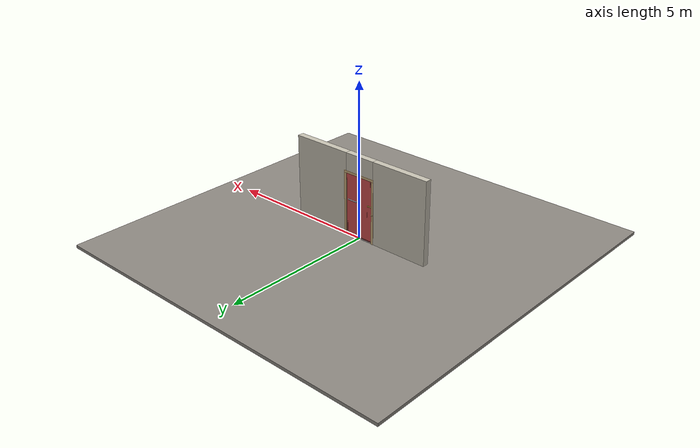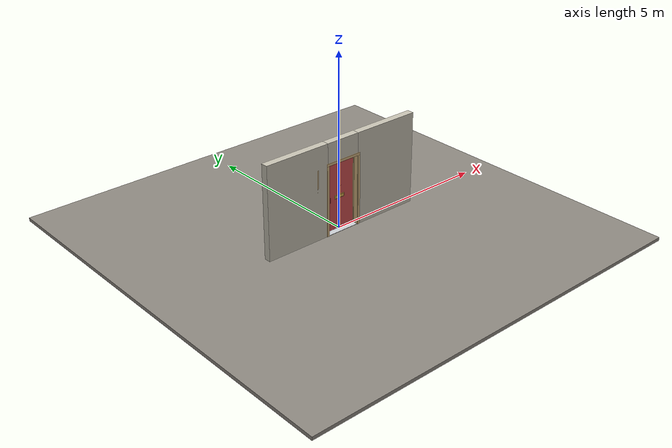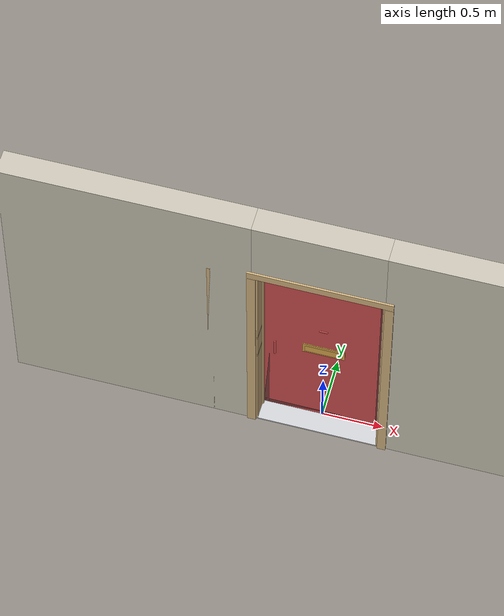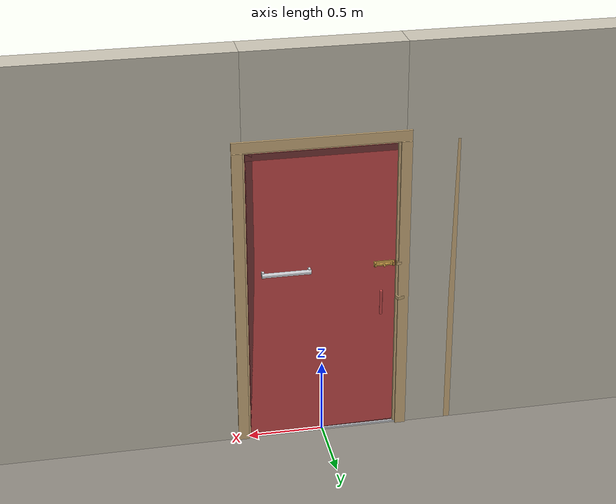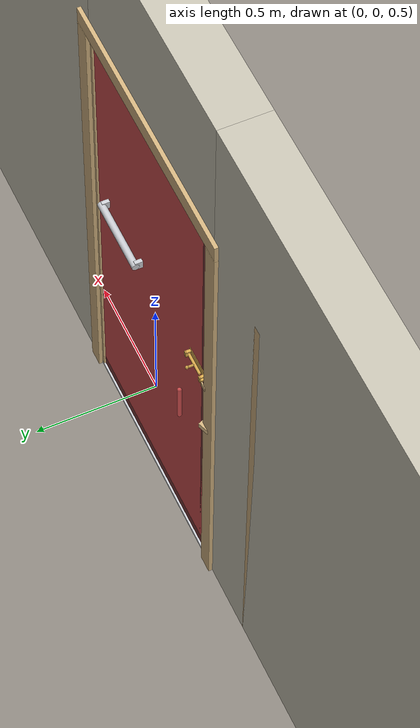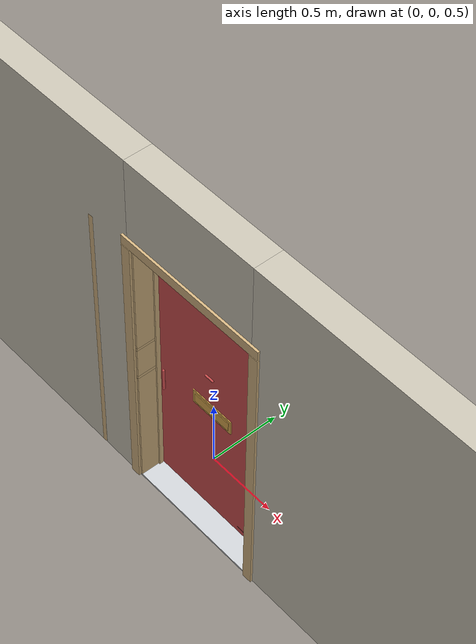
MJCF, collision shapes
<?xml version="1.0" ?>
<mujoco model="db0794_swing_single_full">
  <compiler angle="radian" meshdir="../../hardware" texturedir="../../textures" autolimits="true" inertiafromgeom="false"/>
  <option timestep="0.002" integrator="implicitfast" cone="elliptic" impratio="10" noslip_iterations="3">
    <flag multiccd="enable"/>
  </option>
  <size memory="16M"/>
  <default>
    <geom condim="4" solref="0.005 1" solimp="0.95 0.99 0.001"/>
    <joint solreflimit="0.005 1" solimplimit="0.95 0.99 0.001"/>
    <tendon solreflimit="0.005 1"/>
    <equality solref="0.002 1"/>
  </default>
  <visual>
    <headlight ambient="0.4 0.4 0.4" diffuse="0.7 0.7 0.7" specular="0.2 0.2 0.2"/>
    <quality shadowsize="4096"/>
    <map znear="0.01" zfar="60"/>
  </visual>
  <asset>
    <mesh name="hinge_11b97d6068" file="hinge_11b97d6068.obj"/>
    <mesh name="hinge_jamb_29995db8a9" file="hinge_jamb_29995db8a9.obj"/>
    <mesh name="house_numbers_ad0a8e8be0" file="house_numbers_ad0a8e8be0.obj"/>
    <mesh name="knocker_a8f2ce0ad7" file="knocker_a8f2ce0ad7.obj"/>
    <mesh name="pull_1e5d69a91a" file="pull_1e5d69a91a.obj"/>
    <material name="mat_floor" rgba="0.55 0.53 0.5 1" specular="0.2" shininess="0.15" reflectance="0"/>
    <material name="mat_wall" rgba="0.78 0.76 0.7 1" specular="0.2" shininess="0.1" reflectance="0"/>
    <material name="mat_leaf" rgba="0.2 0.2 0.2 0.5" specular="0.2" shininess="0.2" reflectance="0.1"/>
    <material name="mat_mesh_infill" rgba="0.6 0.62 0.64 0.55" specular="0.68" shininess="0.3" reflectance="0.1"/>
    <material name="mat_hinge" rgba="0.65 0.66 0.68 1" specular="0.74" shininess="0.5" reflectance="0.36"/>
    <material name="mat_op_stainless" rgba="0.75 0.76 0.77 1" specular="0.8" shininess="0.65" reflectance="0.4"/>
    <material name="mat_bolt" rgba="0.85 0.66 0.3 1" specular="0.8" shininess="0.75" reflectance="0.4"/>
    <material name="mat_op_brass" rgba="0.85 0.66 0.3 1" specular="0.8" shininess="0.75" reflectance="0.4"/>
    <material name="mat_frame" rgba="0.82 0.7 0.5 1" specular="0.2" shininess="0.45" reflectance="0"/>
    <material name="mat_seal" rgba="0.1 0.1 0.1 1" specular="0.2" shininess="0.1" reflectance="0"/>
    <material name="mat_threshold" rgba="0.8 0.81 0.83 1" specular="0.8" shininess="0.6" reflectance="0.4"/>
    <material name="mat_closer" rgba="0.8 0.81 0.83 1" specular="0.8" shininess="0.6" reflectance="0.4"/>
    <material name="mat_mailslot" rgba="0.85 0.66 0.3 1" specular="0.8" shininess="0.75" reflectance="0.4"/>
    <material name="mat_knocker" rgba="0.55 0.42 0.22 1" specular="0.74" shininess="0.45" reflectance="0.36"/>
    <material name="mat_numbers" rgba="0.05 0.05 0.05 1" specular="0.38" shininess="0.3" reflectance="0.12"/>
    <material name="mat_sidelite" rgba="0.85 0.92 0.95 0.25" specular="0.2" shininess="0.95" reflectance="0.1"/>
    <texture name="skybox" type="skybox" builtin="gradient" rgb1="0.6 0.7 0.85" rgb2="0.9 0.92 0.95" width="256" height="256"/>
  </asset>
  <worldbody>
    <light name="sun" pos="1.5 -2.5 4" dir="-0.3 0.5 -0.8" directional="true" diffuse="0.8 0.8 0.8" specular="0.3 0.3 0.3" castshadow="true"/>
    <light name="fill" pos="-1.5 2.5 3" dir="0.3 -0.5 -0.7" directional="true" diffuse="0.35 0.35 0.4" castshadow="false"/>
    <camera name="robot_view" pos="0 -2.622687 1.734312" xyaxes="1 0 0 0 0.26963 0.962964" fovy="52"/>
    <camera name="far_view" pos="0 2.461688 1.734312" xyaxes="-1 0 0 0 -0.26963 0.962964" fovy="52"/>
    <camera name="iso" pos="-1.932062 -2.215937 2.141063" xyaxes="0.741536 -0.670913 0 0.242917 0.268487 0.932151" fovy="46"/>
    <camera name="detail_handle" pos="-0.197 -0.8725 1.245" xyaxes="0.97561 0.219512 0 -0.070934 0.315262 0.94635" fovy="38"/>
    <geom name="floor" type="box" size="6 6 0.05" pos="0 0 -0.05" material="mat_floor" group="0" contype="1" conaffinity="1" friction="0.8 0.005 0.0001" density="2400"/>
    <geom name="wall_left" type="box" size="0.9825 0.1 1.35" pos="-1.5175 -0.0805 1.35" material="mat_wall" group="0" contype="1" conaffinity="1" friction="0.6 0.005 0.0001" density="800"/>
    <geom name="wall_right" type="box" size="0.9975 0.1 1.35" pos="1.5025 -0.0805 1.35" material="mat_wall" group="0" contype="1" conaffinity="1" friction="0.6 0.005 0.0001" density="800"/>
    <geom name="wall_header" type="box" size="0.52 0.1 0.303" pos="-0.015 -0.0805 2.397" material="mat_wall" group="0" contype="1" conaffinity="1" friction="0.6 0.005 0.0001" density="800"/>
    <geom name="hinge_0_jamb" type="mesh" mesh="hinge_jamb_29995db8a9" pos="0.483 0.0195 0.267" quat="0 0 0 1" material="mat_hinge" group="1" contype="0" conaffinity="0" density="7850"/>
    <geom name="hinge_1_jamb" type="mesh" mesh="hinge_jamb_29995db8a9" pos="0.483 0.0195 1.029" quat="0 0 0 1" material="mat_hinge" group="1" contype="0" conaffinity="0" density="7850"/>
    <geom name="hinge_2_jamb" type="mesh" mesh="hinge_jamb_29995db8a9" pos="0.483 0.0195 1.861" quat="0 0 0 1" material="mat_hinge" group="1" contype="0" conaffinity="0" density="7850"/>
    <geom name="leaf_aux_bolt_keeper_b" type="box" size="0.014 0.003 0.0005" pos="-0.4855 0.0245 1.202" quat="0.5 0.5 0.5 0.5" material="mat_op_brass" group="1" contype="0" conaffinity="0" density="7800"/>
    <geom name="leaf_aux_bolt_keeper_l" type="box" size="0.003 0.01 0.0005" pos="-0.4855 0.0135 1.215" quat="0.5 0.5 0.5 0.5" material="mat_op_brass" group="1" contype="0" conaffinity="0" density="7800"/>
    <geom name="leaf_aux_bolt_keeper_t" type="box" size="0.014 0.003 0.0005" pos="-0.4855 0.0245 1.228" quat="0.5 0.5 0.5 0.5" material="mat_op_brass" group="1" contype="0" conaffinity="0" density="7800"/>
    <geom name="leaf_aux_bolt_keeper_r" type="box" size="0.003 0.01 0.0005" pos="-0.4855 0.0355 1.215" quat="0.5 0.5 0.5 0.5" material="mat_op_brass" group="1" contype="0" conaffinity="0" density="7800"/>
    <geom name="jamb_hinge" type="box" size="0.0095 0.1 1.0225" pos="0.4955 -0.0805 1.0225" material="mat_frame" group="0" contype="1" conaffinity="1" friction="0.6 0.005 0.0001" density="400"/>
    <geom name="strike_965_wall_n" type="box" size="0.0245 0.0875 0.0115" pos="-0.5105 -0.093 0.965" material="mat_frame" group="0" contype="1" conaffinity="1" friction="0.6 0.005 0.0001" density="400"/>
    <geom name="strike_965_wall_p" type="box" size="0.0245 0.008 0.0115" pos="-0.5105 0.0135 0.965" material="mat_frame" group="0" contype="1" conaffinity="1" friction="0.6 0.005 0.0001" density="400"/>
    <geom name="strike_965_ramp" type="box" size="0.0245 0.015977 0.0115" pos="-0.514502 0.028066 0.965" quat="0.984601 0 0 0.174819" material="mat_frame" group="0" contype="1" conaffinity="1" friction="0.12 0.005 0.0001" density="400"/>
    <geom name="strike_965_back" type="box" size="0.0175 0.0055 0.0115" pos="-0.5175 0 0.965" material="mat_frame" group="0" contype="1" conaffinity="1" friction="0.6 0.005 0.0001" density="400"/>
    <geom name="strike_1215_wall_n" type="box" size="0.0245 0.0985 0.01" pos="-0.5105 -0.082 1.215" material="mat_frame" group="0" contype="1" conaffinity="1" friction="0.6 0.005 0.0001" density="400"/>
    <geom name="strike_1215_wall_p" type="box" size="0.015 0.003 0.01" pos="-0.501 0.0355 1.215" material="mat_frame" group="0" contype="1" conaffinity="1" friction="0.6 0.005 0.0001" density="400"/>
    <geom name="strike_1215_back" type="box" size="0.0125 0.008 0.01" pos="-0.5225 0.0245 1.215" material="mat_frame" group="0" contype="1" conaffinity="1" friction="0.6 0.005 0.0001" density="400"/>
    <geom name="jamb_strike_0" type="box" size="0.0245 0.1 0.47675" pos="-0.5105 -0.0805 0.47675" material="mat_frame" group="0" contype="1" conaffinity="1" friction="0.6 0.005 0.0001" density="400"/>
    <geom name="jamb_strike_1" type="box" size="0.0245 0.1 0.11425" pos="-0.5105 -0.0805 1.09075" material="mat_frame" group="0" contype="1" conaffinity="1" friction="0.6 0.005 0.0001" density="400"/>
    <geom name="jamb_strike_2" type="box" size="0.0245 0.1 0.41" pos="-0.5105 -0.0805 1.635" material="mat_frame" group="0" contype="1" conaffinity="1" friction="0.6 0.005 0.0001" density="400"/>
    <geom name="jamb_head" type="box" size="0.52 0.1 0.0095" pos="-0.015 -0.0805 2.0545" material="mat_frame" group="0" contype="1" conaffinity="1" friction="0.6 0.005 0.0001" density="400"/>
    <geom name="head_stud" type="box" size="0.52 0.1 0.015" pos="-0.015 -0.0805 2.079" material="mat_wall" group="0" contype="1" conaffinity="1" friction="0.6 0.005 0.0001" density="500"/>
    <geom name="stop_hinge" type="box" size="0.0055 0.016 1.0225" pos="0.4805 -0.029 1.0225" material="mat_frame" group="0" contype="1" conaffinity="1" friction="0.6 0.005 0.0001" density="400"/>
    <geom name="stop_strike" type="box" size="0.0055 0.016 1.0225" pos="-0.4805 -0.029 1.0225" material="mat_frame" group="0" contype="1" conaffinity="1" friction="0.6 0.005 0.0001" density="400"/>
    <geom name="stop_head" type="box" size="0.486 0.016 0.0055" pos="0 -0.029 2.0395" material="mat_frame" group="0" contype="1" conaffinity="1" friction="0.6 0.005 0.0001" density="400"/>
    <geom name="seal_hinge" type="box" size="0.004 0.004 1.0225" pos="0.483 -0.0165 1.0225" material="mat_seal" group="1" contype="0" conaffinity="0" density="1100"/>
    <geom name="seal_strike" type="box" size="0.004 0.004 1.0225" pos="-0.483 -0.0165 1.0225" material="mat_seal" group="1" contype="0" conaffinity="0" density="1100"/>
    <geom name="seal_head" type="box" size="0.466 0.004 0.008" pos="0 -0.0165 2.033" material="mat_seal" group="1" contype="0" conaffinity="0" density="1100"/>
    <geom name="casing_l_n" type="box" size="0.035 0.008 1.032" pos="-0.535 -0.1885 1.0225" material="mat_frame" group="2" contype="0" conaffinity="0" density="400"/>
    <geom name="casing_r_n" type="box" size="0.035 0.008 1.032" pos="0.535 -0.1885 1.0225" material="mat_frame" group="2" contype="0" conaffinity="0" density="400"/>
    <geom name="casing_h_n" type="box" size="0.57 0.008 0.035" pos="0 -0.1885 2.094" material="mat_frame" group="2" contype="0" conaffinity="0" density="400"/>
    <geom name="casing_l_p" type="box" size="0.035 0.008 1.032" pos="-0.535 0.0275 1.0225" material="mat_frame" group="2" contype="0" conaffinity="0" density="400"/>
    <geom name="casing_r_p" type="box" size="0.035 0.008 1.032" pos="0.535 0.0275 1.0225" material="mat_frame" group="2" contype="0" conaffinity="0" density="400"/>
    <geom name="casing_h_p" type="box" size="0.57 0.008 0.035" pos="0 0.0275 2.094" material="mat_frame" group="2" contype="0" conaffinity="0" density="400"/>
    <geom name="threshold" type="box" size="0.505 0.1 0.0065" pos="0 -0.0805 0.0065" material="mat_threshold" group="0" contype="1" conaffinity="1" friction="0.5 0.005 0.0001" density="2700"/>
    <geom name="sidelite_glass" type="box" size="0.15 0.003 0.9725" pos="-0.696 0 1.0225" material="mat_sidelite" group="0" contype="1" conaffinity="1" friction="0.6 0.005 0.0001" density="2500"/>
    <geom name="sidelite_frame" type="box" size="0.02 0.1 1.0225" pos="-0.866 -0.0805 1.0225" material="mat_frame" group="0" contype="1" conaffinity="1" friction="0.6 0.005 0.0001" density="600"/>
    <site name="approach_point" pos="0 -1.5 0" quat="1 0 0 0" size="0.05" rgba="0.2 0.9 0.2 0.5" group="4"/>
    <site name="goal_point" pos="0 1.5 0" quat="1 0 0 0" size="0.05" rgba="0.2 0.9 0.2 0.5" group="4"/>
    <site name="door_plane_center" pos="0 0 1.0225" quat="1 0 0 0" size="0.02" rgba="0.2 0.9 0.2 0.5" group="4"/>
    <body name="leaf" pos="0.486 0 0">
      <inertial pos="-0.485526 0.000052 1.029465" mass="133.604414" quat="0.500518 -0.500169 -0.499905 -0.499408" diaginertia="10.381065839 44.493691333 54.8498939"/>
      <joint name="leaf_hinge" type="hinge" axis="0 0 -1" pos="-0.003 0.0195 0" limited="true" range="0 1.570796" solreflimit="0.02 1" damping="4.318237" frictionloss="10.558159" stiffness="3" springref="-4.575202" armature="0.02"/>
      <geom name="leaf_slab_col" type="box" size="0.4825 0.0125 1.012" pos="-0.4855 0 1.029" material="mat_leaf" group="3" contype="1" conaffinity="1" rgba="0.8 0.3 0.3 0.25" friction="0.35 0.005 0.0001" density="1"/>
      <geom name="leaf_rail_b" type="box" size="0.4825 0.0125 0.0225" pos="-0.4855 0 0.0395" material="mat_leaf" group="1" contype="0" conaffinity="0" density="1"/>
      <geom name="leaf_rail_t" type="box" size="0.4825 0.0125 0.0225" pos="-0.4855 0 2.0185" material="mat_leaf" group="1" contype="0" conaffinity="0" density="1"/>
      <geom name="leaf_stile_h" type="box" size="0.0225 0.0125 1.012" pos="-0.0255 0 1.029" material="mat_leaf" group="1" contype="0" conaffinity="0" density="1"/>
      <geom name="leaf_stile_l" type="box" size="0.0225 0.0125 1.012" pos="-0.9455 0 1.029" material="mat_leaf" group="1" contype="0" conaffinity="0" density="1"/>
      <geom name="leaf_mesh" type="box" size="0.4375 0.0015 0.967" pos="-0.4855 0 1.029" material="mat_mesh_infill" group="1" contype="0" conaffinity="0" density="1"/>
      <geom name="hinge_0" type="mesh" mesh="hinge_11b97d6068" pos="-0.003 0.0195 0.267" quat="0 0 0 1" material="mat_hinge" group="1" contype="0" conaffinity="0" density="7850"/>
      <geom name="hinge_1" type="mesh" mesh="hinge_11b97d6068" pos="-0.003 0.0195 1.029" quat="0 0 0 1" material="mat_hinge" group="1" contype="0" conaffinity="0" density="7850"/>
      <geom name="hinge_2" type="mesh" mesh="hinge_11b97d6068" pos="-0.003 0.0195 1.861" quat="0 0 0 1" material="mat_hinge" group="1" contype="0" conaffinity="0" density="7850"/>
      <geom name="leaf_pull_n" type="mesh" mesh="pull_1e5d69a91a" pos="-0.863 -0.0125 0.965" quat="0 0 -0.707107 0.707107" material="mat_op_stainless" group="1" contype="0" conaffinity="0" density="3000"/>
      <geom name="leaf_pull_col_n" type="capsule" size="0.0095 0.08" pos="-0.863 -0.0725 0.965" material="mat_op_stainless" group="3" contype="1" conaffinity="1" rgba="0.8 0.3 0.3 0.25" friction="0.7 0.01 0.0001" density="3000"/>
      <geom name="leaf_pull_p" type="mesh" mesh="pull_1e5d69a91a" pos="-0.863 0.0125 0.965" quat="0 0 0.707107 0.707107" material="mat_op_stainless" group="1" contype="0" conaffinity="0" density="3000"/>
      <geom name="leaf_pull_col_p" type="capsule" size="0.0095 0.08" pos="-0.863 0.0725 0.965" material="mat_op_stainless" group="3" contype="1" conaffinity="1" rgba="0.8 0.3 0.3 0.25" friction="0.7 0.01 0.0001" density="3000"/>
      <geom name="leaf_latch_bolt_faceplate" type="box" size="0.0006 0.01 0.0215" pos="-0.9674 0 0.965" material="mat_bolt" group="1" contype="0" conaffinity="0" density="8500"/>
      <geom name="leaf_aux_bolt_plate" type="box" size="0.0685 0.019 0.001" pos="-0.8915 0.0135 1.215" quat="0 0 0.707107 0.707107" material="mat_op_brass" group="1" contype="0" conaffinity="0" density="7800"/>
      <geom name="leaf_aux_bolt_guide_0_leg_n" type="box" size="0.006 0.002 0.0125" pos="-0.952 0.025 1.204" quat="0 0 0.707107 0.707107" material="mat_op_brass" group="1" contype="0" conaffinity="0" density="7800"/>
      <geom name="leaf_aux_bolt_guide_0_leg_p" type="box" size="0.006 0.002 0.0125" pos="-0.952 0.025 1.226" quat="0 0 0.707107 0.707107" material="mat_op_brass" group="1" contype="0" conaffinity="0" density="7800"/>
      <geom name="leaf_aux_bolt_guide_0_bridge" type="box" size="0.006 0.013 0.002" pos="-0.952 0.0355 1.215" quat="0 0 0.707107 0.707107" material="mat_op_brass" group="1" contype="0" conaffinity="0" density="7800"/>
      <geom name="leaf_aux_bolt_guide_1_leg_n" type="box" size="0.006 0.002 0.0125" pos="-0.833 0.025 1.204" quat="0 0 0.707107 0.707107" material="mat_op_brass" group="1" contype="0" conaffinity="0" density="7800"/>
      <geom name="leaf_aux_bolt_guide_1_leg_p" type="box" size="0.006 0.002 0.0125" pos="-0.833 0.025 1.226" quat="0 0 0.707107 0.707107" material="mat_op_brass" group="1" contype="0" conaffinity="0" density="7800"/>
      <geom name="leaf_aux_bolt_guide_1_bridge" type="box" size="0.006 0.013 0.002" pos="-0.833 0.0355 1.215" quat="0 0 0.707107 0.707107" material="mat_op_brass" group="1" contype="0" conaffinity="0" density="7800"/>
      <geom name="closer_pneumatic" type="cylinder" size="0.015 0.16" pos="-0.25 0.0425 1.2144" quat="0.707107 0 0.707107 0" material="mat_closer" group="1" contype="0" conaffinity="0" density="2700"/>
      <geom name="closer_pneumatic_bracket_0" type="box" size="0.008 0.016 0.018" pos="-0.1 0.0285 1.2144" material="mat_closer" group="1" contype="0" conaffinity="0" density="2700"/>
      <geom name="closer_pneumatic_bracket_1" type="box" size="0.008 0.016 0.018" pos="-0.4 0.0285 1.2144" material="mat_closer" group="1" contype="0" conaffinity="0" density="2700"/>
      <geom name="mail_slot_frame" type="box" size="0.17 0.003 0.055" pos="-0.4855 -0.0155 0.967" material="mat_mailslot" group="2" contype="0" conaffinity="0" density="8500"/>
      <geom name="house_numbers" type="mesh" mesh="house_numbers_ad0a8e8be0" pos="-0.4855 -0.0125 1.691" quat="0 0 -0.707107 0.707107" material="mat_numbers" group="2" contype="0" conaffinity="0" density="1000"/>
      <site name="leaf_pull_grip_n" pos="-0.863 -0.0725 0.965" quat="1 0 0 0" size="0.012" rgba="0.2 0.9 0.2 0.5" group="4"/>
      <site name="leaf_pull_grip_p" pos="-0.863 0.0725 0.965" quat="1 0 0 0" size="0.012" rgba="0.2 0.9 0.2 0.5" group="4"/>
      <site name="leaf_edge_mid" pos="-0.968 0 1.012" quat="1 0 0 0" size="0.02" rgba="0.2 0.9 0.2 0.5" group="4"/>
      <body name="leaf_latch_bolt" pos="-0.968 0 0.965">
        <inertial pos="0.008 0 0" mass="0.014242" quat="0 0 -0.707107 0.707107" diaginertia="0.00000011 0.000001386 0.000001386"/>
        <joint name="leaf_latch_bolt_slide" type="slide" axis="1 0 0" limited="true" range="0 0.01" damping="2" frictionloss="0.3" stiffness="300" springref="-0.006667" armature="0.1"/>
        <geom name="leaf_latch_bolt_capsule" type="capsule" size="0.004 0.014" pos="0.008 0 0" quat="0.707107 0 -0.707107 0" material="mat_bolt" group="0" contype="1" conaffinity="1" friction="0.2 0.005 0.0001" density="8500"/>
      </body>
      <body name="leaf_aux_bolt" pos="-0.968 0.0245 1.215">
        <inertial pos="0.082287 0.00492 0" mass="0.111784" quat="0.999932 0 0 -0.011627" diaginertia="0.000012853 0.000066972 0.000077936"/>
        <joint name="leaf_aux_bolt_slide" type="slide" axis="1 0 0" limited="true" range="0 0.045" damping="1" frictionloss="1" armature="0.1" ref="0.045"/>
        <geom name="leaf_aux_bolt_rod" type="capsule" size="0.006 0.044" pos="0.083 0 0" quat="0.707107 0 -0.707107 0" material="mat_op_brass" group="0" contype="1" conaffinity="1" friction="0.6 0.005 0.0001" density="7850"/>
        <geom name="leaf_aux_bolt_knob" type="capsule" size="0.005 0.01" pos="0.08 0.015 0" quat="0.707107 -0.707107 0 0" material="mat_op_brass" group="0" contype="1" conaffinity="1" friction="0.6 0.005 0.0001" density="7850"/>
        <geom name="leaf_aux_bolt_knob_end" type="sphere" size="0.00675" pos="0.08 0.03 0" material="mat_op_brass" group="1" contype="0" conaffinity="0" density="7850"/>
        <site name="leaf_aux_bolt_grip" pos="0.08 0.034 0" quat="1 0 0 0" size="0.012" rgba="0.2 0.9 0.2 0.5" group="4"/>
      </body>
      <body name="mail_slot_flap" pos="-0.4855 -0.021 1.002">
        <inertial pos="0 0 -0.035" mass="0.714" quat="0 0 0.707107 0.707107" diaginertia="0.000292502 0.005355952 0.00564655"/>
        <joint name="mail_slot_hinge" type="hinge" axis="-1 0 0" limited="true" range="0 1.2" damping="0.01" stiffness="0.3" springref="-0.3" armature="0.002"/>
        <geom name="mail_slot_flap_geom" type="box" size="0.15 0.002 0.035" pos="0 0 -0.035" material="mat_mailslot" group="0" contype="1" conaffinity="1" friction="0.6 0.005 0.0001" density="8500"/>
      </body>
      <body name="knocker" pos="-0.4855 -0.0125 1.297">
        <inertial pos="0 -0.010216 0.001203" mass="0.814961" quat="0.49606 0.50391 0.50391 -0.49606" diaginertia="0.000611431 0.001116108 0.001534609"/>
        <joint name="knocker_hinge" type="hinge" axis="-1 0 0" pos="0 0 0.055" limited="true" range="0 0.6" damping="0.005" armature="0.002"/>
        <geom name="knocker_mesh" type="mesh" mesh="knocker_a8f2ce0ad7" pos="0 0 0" quat="0 0 -0.707107 0.707107" material="mat_knocker" group="2" contype="0" conaffinity="0" density="8500"/>
        <geom name="knocker_col" type="capsule" size="0.007 0.03" pos="0 -0.025 -0.01" quat="0.707107 0 0.707107 0" material="mat_knocker" group="3" contype="1" conaffinity="1" rgba="0.8 0.3 0.3 0.25" friction="0.6 0.005 0.0001" density="8500"/>
      </body>
    </body>
  </worldbody>
  <sensor>
    <jointpos name="leaf_hinge_pos" joint="leaf_hinge"/>
    <jointvel name="leaf_hinge_vel" joint="leaf_hinge"/>
    <jointpos name="leaf_latch_bolt_slide_pos" joint="leaf_latch_bolt_slide"/>
    <jointvel name="leaf_latch_bolt_slide_vel" joint="leaf_latch_bolt_slide"/>
    <jointpos name="leaf_aux_bolt_slide_pos" joint="leaf_aux_bolt_slide"/>
    <jointvel name="leaf_aux_bolt_slide_vel" joint="leaf_aux_bolt_slide"/>
  </sensor>
</mujoco>
